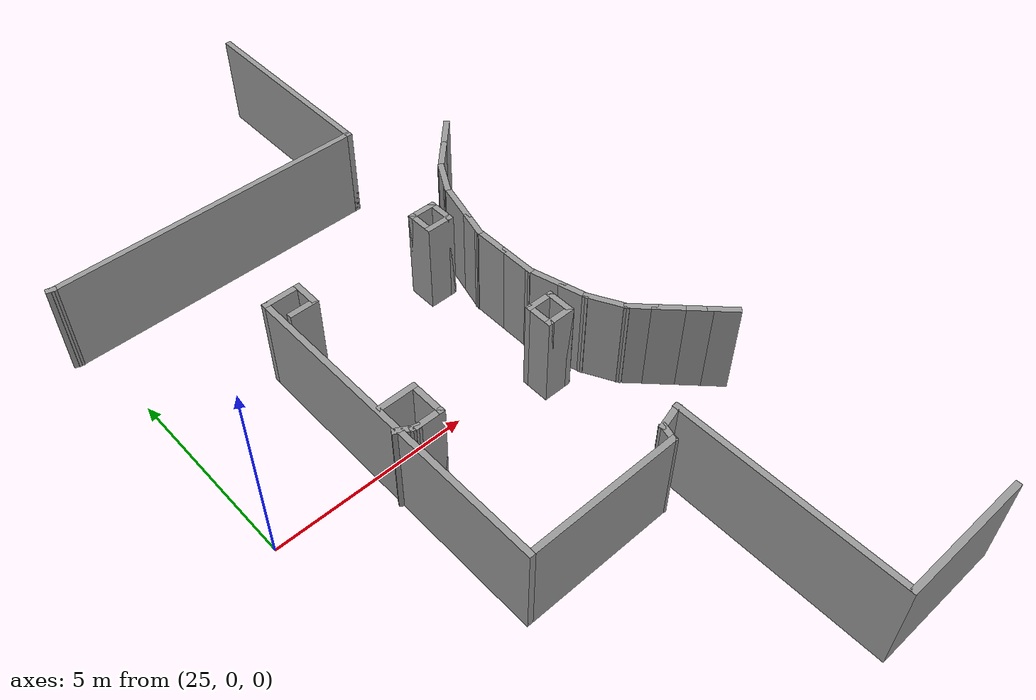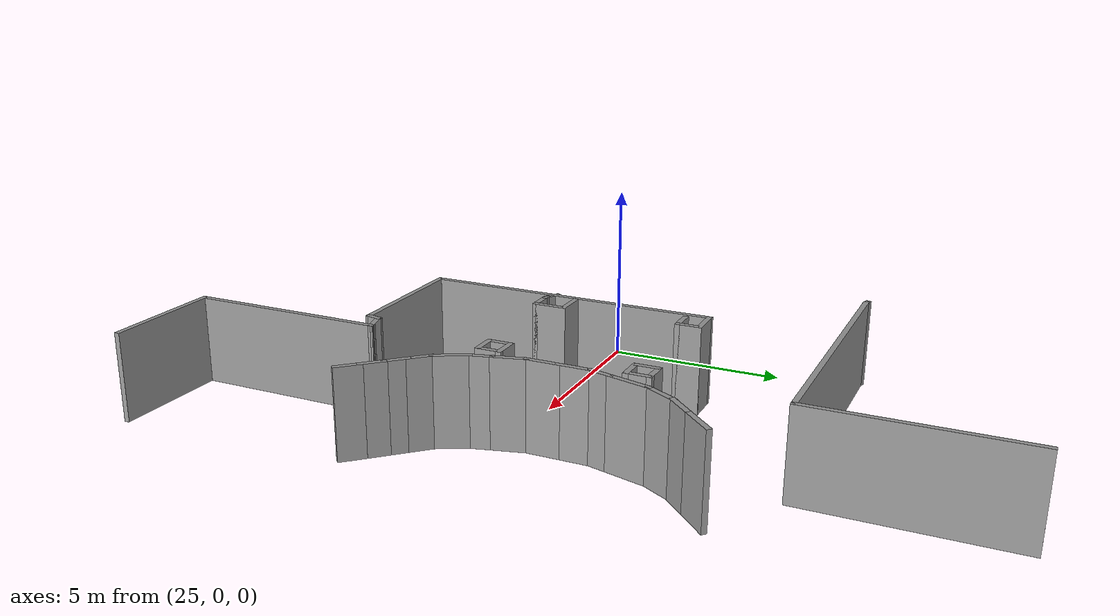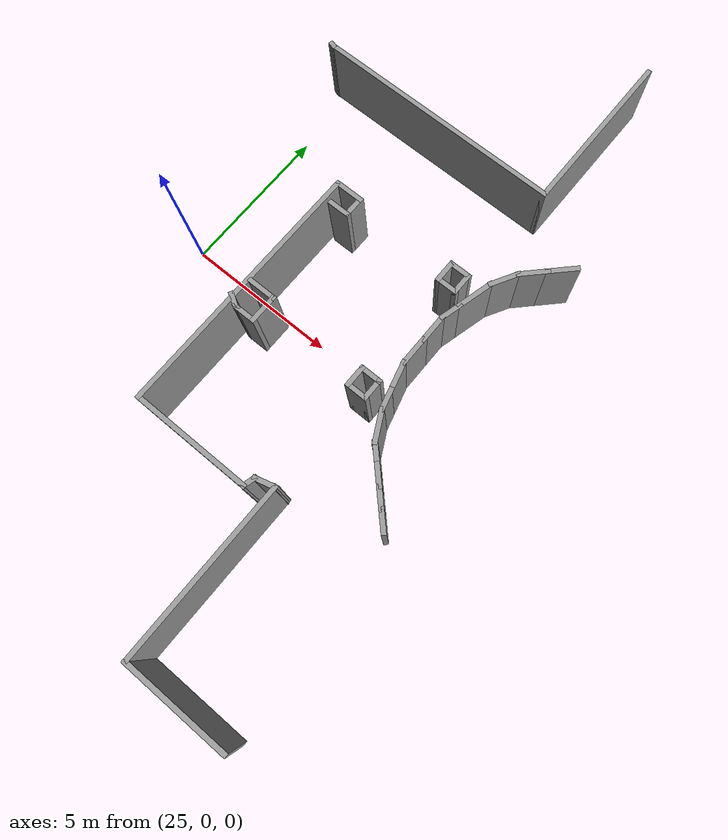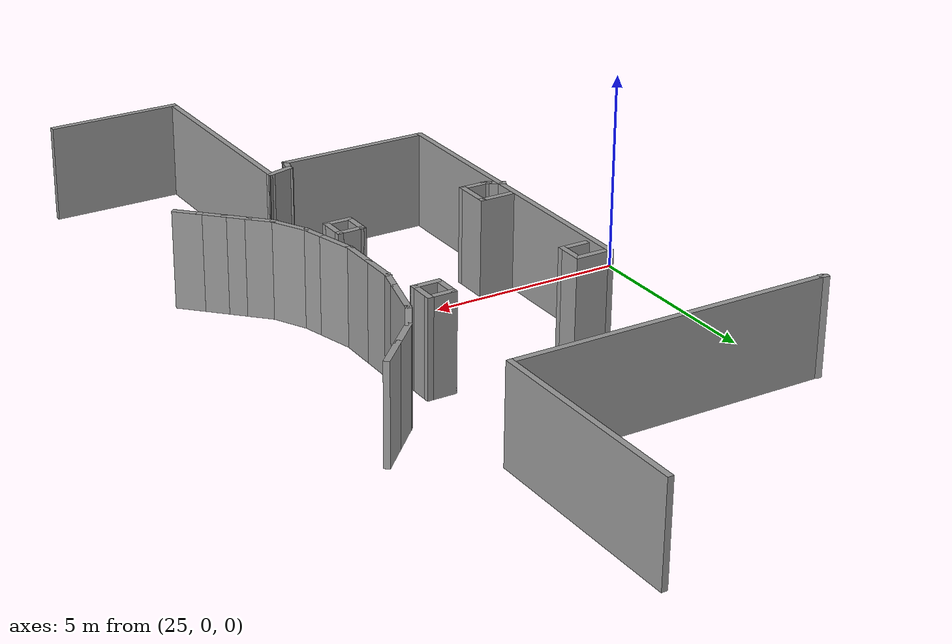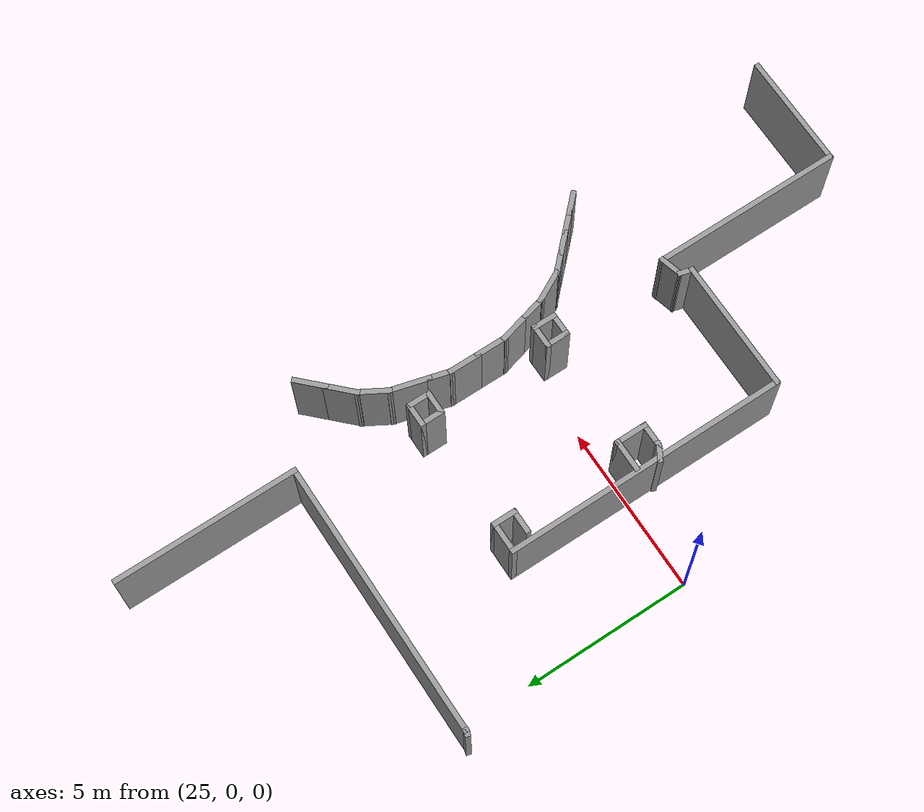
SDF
<sdf version="1.7">
 <model name="TD_n1">
  <pose>-6.74052 -9.30399 0 0 -0 0</pose>
  <link name="Wall_248">
   <collision name="Wall_248_Collision">
    <geometry><box><size>0.25 0.15 2.5</size></box></geometry>
    <pose>0 0 1.25 0 -0 0</pose>
   </collision>
   <visual name="Wall_248_Visual">
    <pose>0 0 1.25 0 -0 0</pose>
    <geometry><box><size>0.25 0.15 2.5</size></box></geometry>
    <material>
     <script><uri>file://media/materials/scripts/gazebo.material</uri><name>Gazebo/Grey</name></script>
     <ambient>1 1 1 1</ambient>
    </material>
    <meta><layer>0</layer></meta>
   </visual>
   <pose>31.2335 16.5416 0 0 -0 -0.261799</pose>
  </link>
  <link name="Wall_249">
   <collision name="Wall_249_Collision">
    <geometry><box><size>8.25 0.15 2.5</size></box></geometry>
    <pose>0 0 1.25 0 -0 0</pose>
   </collision>
   <visual name="Wall_249_Visual">
    <pose>0 0 1.25 0 -0 0</pose>
    <geometry><box><size>8.25 0.15 2.5</size></box></geometry>
    <material>
     <script><uri>file://media/materials/scripts/gazebo.material</uri><name>Gazebo/Grey</name></script>
     <ambient>1 1 1 1</ambient>
    </material>
    <meta><layer>0</layer></meta>
   </visual>
   <pose>35.3317 16.5287 0 0 -0 0</pose>
  </link>
  <link name="Wall_250">
   <collision name="Wall_250_Collision">
    <geometry><box><size>5.5 0.15 2.5</size></box></geometry>
    <pose>0 0 1.25 0 -0 0</pose>
   </collision>
   <visual name="Wall_250_Visual">
    <pose>0 0 1.25 0 -0 0</pose>
    <geometry><box><size>5.5 0.15 2.5</size></box></geometry>
    <material>
     <script><uri>file://media/materials/scripts/gazebo.material</uri><name>Gazebo/Grey</name></script>
     <ambient>1 1 1 1</ambient>
    </material>
    <meta><layer>0</layer></meta>
   </visual>
   <pose>39.3817 19.2037 0 0 -0 1.5708</pose>
  </link>
  <link name="Wall_259">
   <collision name="Wall_259_Collision">
    <geometry><box><size>8.5 0.15 2.5</size></box></geometry>
    <pose>0 0 1.25 0 -0 0</pose>
   </collision>
   <visual name="Wall_259_Visual">
    <pose>0 0 1.25 0 -0 0</pose>
    <geometry><box><size>8.5 0.15 2.5</size></box></geometry>
    <material>
     <script><uri>file://media/materials/scripts/gazebo.material</uri><name>Gazebo/Grey</name></script>
     <ambient>1 1 1 1</ambient>
    </material>
    <meta><layer>0</layer></meta>
   </visual>
   <pose>34.4688 8.81743 0 0 -0 -1.5708</pose>
  </link>
  <link name="Wall_260">
   <collision name="Wall_260_Collision">
    <geometry><box><size>4 0.15 2.5</size></box></geometry>
    <pose>0 0 1.25 0 -0 0</pose>
   </collision>
   <visual name="Wall_260_Visual">
    <pose>0 0 1.25 0 -0 0</pose>
    <geometry><box><size>4 0.15 2.5</size></box></geometry>
    <material>
     <script><uri>file://media/materials/scripts/gazebo.material</uri><name>Gazebo/Grey</name></script>
     <ambient>1 1 1 1</ambient>
    </material>
    <meta><layer>0</layer></meta>
   </visual>
   <pose>36.3938 4.64243 0 0 -0 0</pose>
  </link>
  <link name="Wall_261">
   <collision name="Wall_261_Collision">
    <geometry><box><size>0.5 0.15 2.5</size></box></geometry>
    <pose>0 0 1.25 0 -0 0</pose>
   </collision>
   <visual name="Wall_261_Visual">
    <pose>0 0 1.25 0 -0 0</pose>
    <geometry><box><size>0.5 0.15 2.5</size></box></geometry>
    <material>
     <script><uri>file://media/materials/scripts/gazebo.material</uri><name>Gazebo/Grey</name></script>
     <ambient>1 1 1 1</ambient>
    </material>
    <meta><layer>0</layer></meta>
   </visual>
   <pose>38.364 4.81147 0 0 -0 1.309</pose>
  </link>
  <link name="Wall_262">
   <collision name="Wall_262_Collision">
    <geometry><box><size>0.75 0.15 2.5</size></box></geometry>
    <pose>0 0 1.25 0 -0 0</pose>
   </collision>
   <visual name="Wall_262_Visual">
    <pose>0 0 1.25 0 -0 0</pose>
    <geometry><box><size>0.75 0.15 2.5</size></box></geometry>
    <material>
     <script><uri>file://media/materials/scripts/gazebo.material</uri><name>Gazebo/Grey</name></script>
     <ambient>1 1 1 1</ambient>
    </material>
    <meta><layer>0</layer></meta>
   </visual>
   <pose>38.6991 5.05815 0 0 -0 0.261799</pose>
  </link>
  <link name="Wall_263">
   <collision name="Wall_263_Collision">
    <geometry><box><size>5.75 0.15 2.5</size></box></geometry>
    <pose>0 0 1.25 0 -0 0</pose>
   </collision>
   <visual name="Wall_263_Visual">
    <pose>0 0 1.25 0 -0 0</pose>
    <geometry><box><size>5.75 0.15 2.5</size></box></geometry>
    <material>
     <script><uri>file://media/materials/scripts/gazebo.material</uri><name>Gazebo/Grey</name></script>
     <ambient>1 1 1 1</ambient>
    </material>
    <meta><layer>0</layer></meta>
   </visual>
   <pose>38.9889 2.3358 0 0 -0 -1.5708</pose>
  </link>
  <link name="Wall_264">
   <collision name="Wall_264_Collision">
    <geometry><box><size>3.5 0.15 2.5</size></box></geometry>
    <pose>0 0 1.25 0 -0 0</pose>
   </collision>
   <visual name="Wall_264_Visual">
    <pose>0 0 1.25 0 -0 0</pose>
    <geometry><box><size>3.5 0.15 2.5</size></box></geometry>
    <material>
     <script><uri>file://media/materials/scripts/gazebo.material</uri><name>Gazebo/Grey</name></script>
     <ambient>1 1 1 1</ambient>
    </material>
    <meta><layer>0</layer></meta>
   </visual>
   <pose>40.6639 -0.464205 0 0 -0 0</pose>
  </link>
  <link name="Wall_281">
   <collision name="Wall_281_Collision">
    <geometry><box><size>0.75 0.15 2.5</size></box></geometry>
    <pose>0 0 1.25 0 -0 0</pose>
   </collision>
   <visual name="Wall_281_Visual">
    <pose>0 0 1.25 0 -0 0</pose>
    <geometry><box><size>0.75 0.15 2.5</size></box></geometry>
    <material>
     <script><uri>file://media/materials/scripts/gazebo.material</uri><name>Gazebo/Grey</name></script>
     <ambient>1 1 1 1</ambient>
    </material>
    <meta><layer>0</layer></meta>
   </visual>
   <pose>40.4669 7.51143 0 0 -0 -0.785398</pose>
  </link>
  <link name="Wall_282">
   <collision name="Wall_282_Collision">
    <geometry><box><size>0.75 0.15 2.5</size></box></geometry>
    <pose>0 0 1.25 0 -0 0</pose>
   </collision>
   <visual name="Wall_282_Visual">
    <pose>0 0 1.25 0 -0 0</pose>
    <geometry><box><size>0.75 0.15 2.5</size></box></geometry>
    <material>
     <script><uri>file://media/materials/scripts/gazebo.material</uri><name>Gazebo/Grey</name></script>
     <ambient>1 1 1 1</ambient>
    </material>
    <meta><layer>0</layer></meta>
   </visual>
   <pose>40.8911 7.08716 0 0 -0 -0.785398</pose>
  </link>
  <link name="Wall_283">
   <collision name="Wall_283_Collision">
    <geometry><box><size>0.75 0.15 2.5</size></box></geometry>
    <pose>0 0 1.25 0 -0 0</pose>
   </collision>
   <visual name="Wall_283_Visual">
    <pose>0 0 1.25 0 -0 0</pose>
    <geometry><box><size>0.75 0.15 2.5</size></box></geometry>
    <material>
     <script><uri>file://media/materials/scripts/gazebo.material</uri><name>Gazebo/Grey</name></script>
     <ambient>1 1 1 1</ambient>
    </material>
    <meta><layer>0</layer></meta>
   </visual>
   <pose>41.3154 6.6629 0 0 -0 -0.785398</pose>
  </link>
  <link name="Wall_284">
   <collision name="Wall_284_Collision">
    <geometry><box><size>0.75 0.15 2.5</size></box></geometry>
    <pose>0 0 1.25 0 -0 0</pose>
   </collision>
   <visual name="Wall_284_Visual">
    <pose>0 0 1.25 0 -0 0</pose>
    <geometry><box><size>0.75 0.15 2.5</size></box></geometry>
    <material>
     <script><uri>file://media/materials/scripts/gazebo.material</uri><name>Gazebo/Grey</name></script>
     <ambient>1 1 1 1</ambient>
    </material>
    <meta><layer>0</layer></meta>
   </visual>
   <pose>41.7397 6.23864 0 0 -0 -0.785398</pose>
  </link>
  <link name="Wall_322">
   <collision name="Wall_322_Collision">
    <geometry><box><size>1 0.15 2.5</size></box></geometry>
    <pose>0 0 1.25 0 -0 0</pose>
   </collision>
   <visual name="Wall_322_Visual">
    <pose>0 0 1.25 0 -0 0</pose>
    <geometry><box><size>1 0.15 2.5</size></box></geometry>
    <material>
     <script><uri>file://media/materials/scripts/gazebo.material</uri><name>Gazebo/Grey</name></script>
     <ambient>1 1 1 1</ambient>
    </material>
    <meta><layer>0</layer></meta>
   </visual>
   <pose>41.2161 14.9201 0 0 -0 -2.35619</pose>
  </link>
  <link name="Wall_323">
   <collision name="Wall_323_Collision">
    <geometry><box><size>1 0.15 2.5</size></box></geometry>
    <pose>0 0 1.25 0 -0 0</pose>
   </collision>
   <visual name="Wall_323_Visual">
    <pose>0 0 1.25 0 -0 0</pose>
    <geometry><box><size>1 0.15 2.5</size></box></geometry>
    <material>
     <script><uri>file://media/materials/scripts/gazebo.material</uri><name>Gazebo/Grey</name></script>
     <ambient>1 1 1 1</ambient>
    </material>
    <meta><layer>0</layer></meta>
   </visual>
   <pose>40.6151 14.3191 0 0 -0 -2.35619</pose>
  </link>
  <link name="Wall_324">
   <collision name="Wall_324_Collision">
    <geometry><box><size>1 0.15 2.5</size></box></geometry>
    <pose>0 0 1.25 0 -0 0</pose>
   </collision>
   <visual name="Wall_324_Visual">
    <pose>0 0 1.25 0 -0 0</pose>
    <geometry><box><size>1 0.15 2.5</size></box></geometry>
    <material>
     <script><uri>file://media/materials/scripts/gazebo.material</uri><name>Gazebo/Grey</name></script>
     <ambient>1 1 1 1</ambient>
    </material>
    <meta><layer>0</layer></meta>
   </visual>
   <pose>40.1021 13.6505 0 0 -0 -2.0944</pose>
  </link>
  <link name="Wall_325">
   <collision name="Wall_325_Collision">
    <geometry><box><size>1.25 0.15 2.5</size></box></geometry>
    <pose>0 0 1.25 0 -0 0</pose>
   </collision>
   <visual name="Wall_325_Visual">
    <pose>0 0 1.25 0 -0 0</pose>
    <geometry><box><size>1.25 0.15 2.5</size></box></geometry>
    <material>
     <script><uri>file://media/materials/scripts/gazebo.material</uri><name>Gazebo/Grey</name></script>
     <ambient>1 1 1 1</ambient>
    </material>
    <meta><layer>0</layer></meta>
   </visual>
   <pose>39.7472 12.7512 0 0 -0 -1.8326</pose>
  </link>
  <link name="Wall_326">
   <collision name="Wall_326_Collision">
    <geometry><box><size>0.75 0.15 2.5</size></box></geometry>
    <pose>0 0 1.25 0 -0 0</pose>
   </collision>
   <visual name="Wall_326_Visual">
    <pose>0 0 1.25 0 -0 0</pose>
    <geometry><box><size>0.75 0.15 2.5</size></box></geometry>
    <material>
     <script><uri>file://media/materials/scripts/gazebo.material</uri><name>Gazebo/Grey</name></script>
     <ambient>1 1 1 1</ambient>
    </material>
    <meta><layer>0</layer></meta>
   </visual>
   <pose>39.5272 11.9302 0 0 -0 -1.8326</pose>
  </link>
  <link name="Wall_327">
   <collision name="Wall_327_Collision">
    <geometry><box><size>1 0.15 2.5</size></box></geometry>
    <pose>0 0 1.25 0 -0 0</pose>
   </collision>
   <visual name="Wall_327_Visual">
    <pose>0 0 1.25 0 -0 0</pose>
    <geometry><box><size>1 0.15 2.5</size></box></geometry>
    <material>
     <script><uri>file://media/materials/scripts/gazebo.material</uri><name>Gazebo/Grey</name></script>
     <ambient>1 1 1 1</ambient>
    </material>
    <meta><layer>0</layer></meta>
   </visual>
   <pose>39.4496 11.2154 0 0 -0 -1.5708</pose>
  </link>
  <link name="Wall_328">
   <collision name="Wall_328_Collision">
    <geometry><box><size>1 0.15 2.5</size></box></geometry>
    <pose>0 0 1.25 0 -0 0</pose>
   </collision>
   <visual name="Wall_328_Visual">
    <pose>0 0 1.25 0 -0 0</pose>
    <geometry><box><size>1 0.15 2.5</size></box></geometry>
    <material>
     <script><uri>file://media/materials/scripts/gazebo.material</uri><name>Gazebo/Grey</name></script>
     <ambient>1 1 1 1</ambient>
    </material>
    <meta><layer>0</layer></meta>
   </visual>
   <pose>39.4496 10.3654 0 0 -0 -1.5708</pose>
  </link>
  <link name="Wall_329">
   <collision name="Wall_329_Collision">
    <geometry><box><size>1 0.15 2.5</size></box></geometry>
    <pose>0 0 1.25 0 -0 0</pose>
   </collision>
   <visual name="Wall_329_Visual">
    <pose>0 0 1.25 0 -0 0</pose>
    <geometry><box><size>1 0.15 2.5</size></box></geometry>
    <material>
     <script><uri>file://media/materials/scripts/gazebo.material</uri><name>Gazebo/Grey</name></script>
     <ambient>1 1 1 1</ambient>
    </material>
    <meta><layer>0</layer></meta>
   </visual>
   <pose>39.5596 9.52985 0 0 -0 -1.309</pose>
  </link>
  <link name="Wall_330">
   <collision name="Wall_330_Collision">
    <geometry><box><size>0.75 0.15 2.5</size></box></geometry>
    <pose>0 0 1.25 0 -0 0</pose>
   </collision>
   <visual name="Wall_330_Visual">
    <pose>0 0 1.25 0 -0 0</pose>
    <geometry><box><size>0.75 0.15 2.5</size></box></geometry>
    <material>
     <script><uri>file://media/materials/scripts/gazebo.material</uri><name>Gazebo/Grey</name></script>
     <ambient>1 1 1 1</ambient>
    </material>
    <meta><layer>0</layer></meta>
   </visual>
   <pose>39.7472 8.82956 0 0 -0 -1.309</pose>
  </link>
  <link name="Wall_331">
   <collision name="Wall_331_Collision">
    <geometry><box><size>1.0725 0.15 2.5</size></box></geometry>
    <pose>0 0 1.25 0 -0 0</pose>
   </collision>
   <visual name="Wall_331_Visual">
    <pose>0 0 1.25 0 -0 0</pose>
    <geometry><box><size>1.0725 0.15 2.5</size></box></geometry>
    <material>
     <script><uri>file://media/materials/scripts/gazebo.material</uri><name>Gazebo/Grey</name></script>
     <ambient>1 1 1 1</ambient>
    </material>
    <meta><layer>0</layer></meta>
   </visual>
   <pose>40.0398 8.13167 0 0 -0 -1.08604</pose>
  </link>
  <link name="Wall_364">
   <collision name="Wall_364_Collision">
    <geometry><box><size>0.75 0.15 2.5</size></box></geometry>
    <pose>0 0 1.25 0 -0 0</pose>
   </collision>
   <visual name="Wall_364_Visual">
    <pose>0 0 1.25 0 -0 0</pose>
    <geometry><box><size>0.75 0.15 2.5</size></box></geometry>
    <material>
     <script><uri>file://media/materials/scripts/gazebo.material</uri><name>Gazebo/Grey</name></script>
     <ambient>1 1 1 1</ambient>
    </material>
    <meta><layer>0</layer></meta>
   </visual>
   <pose>38.6638 8.79577 0 0 -0 -1.5708</pose>
  </link>
  <link name="Wall_365">
   <collision name="Wall_365_Collision">
    <geometry><box><size>0.75 0.15 2.5</size></box></geometry>
    <pose>0 0 1.25 0 -0 0</pose>
   </collision>
   <visual name="Wall_365_Visual">
    <pose>0 0 1.25 0 -0 0</pose>
    <geometry><box><size>0.75 0.15 2.5</size></box></geometry>
    <material>
     <script><uri>file://media/materials/scripts/gazebo.material</uri><name>Gazebo/Grey</name></script>
     <ambient>1 1 1 1</ambient>
    </material>
    <meta><layer>0</layer></meta>
   </visual>
   <pose>38.9638 8.49577 0 0 -0 0</pose>
  </link>
  <link name="Wall_366">
   <collision name="Wall_366_Collision">
    <geometry><box><size>0.75 0.15 2.5</size></box></geometry>
    <pose>0 0 1.25 0 -0 0</pose>
   </collision>
   <visual name="Wall_366_Visual">
    <pose>0 0 1.25 0 -0 0</pose>
    <geometry><box><size>0.75 0.15 2.5</size></box></geometry>
    <material>
     <script><uri>file://media/materials/scripts/gazebo.material</uri><name>Gazebo/Grey</name></script>
     <ambient>1 1 1 1</ambient>
    </material>
    <meta><layer>0</layer></meta>
   </visual>
   <pose>39.2638 8.79577 0 0 -0 1.5708</pose>
  </link>
  <link name="Wall_367">
   <collision name="Wall_367_Collision">
    <geometry><box><size>0.75 0.15 2.5</size></box></geometry>
    <pose>0 0 1.25 0 -0 0</pose>
   </collision>
   <visual name="Wall_367_Visual">
    <pose>0 0 1.25 0 -0 0</pose>
    <geometry><box><size>0.75 0.15 2.5</size></box></geometry>
    <material>
     <script><uri>file://media/materials/scripts/gazebo.material</uri><name>Gazebo/Grey</name></script>
     <ambient>1 1 1 1</ambient>
    </material>
    <meta><layer>0</layer></meta>
   </visual>
   <pose>38.9638 9.09577 0 0 -0 3.14159</pose>
  </link>
  <link name="Wall_369">
   <collision name="Wall_369_Collision">
    <geometry><box><size>0.75 0.15 2.5</size></box></geometry>
    <pose>0 0 1.25 0 -0 0</pose>
   </collision>
   <visual name="Wall_369_Visual">
    <pose>0 0 1.25 0 -0 0</pose>
    <geometry><box><size>0.75 0.15 2.5</size></box></geometry>
    <material>
     <script><uri>file://media/materials/scripts/gazebo.material</uri><name>Gazebo/Grey</name></script>
     <ambient>1 1 1 1</ambient>
    </material>
    <meta><layer>0</layer></meta>
   </visual>
   <pose>38.6439 12.7732 0 0 -0 -1.5708</pose>
  </link>
  <link name="Wall_370">
   <collision name="Wall_370_Collision">
    <geometry><box><size>0.75 0.15 2.5</size></box></geometry>
    <pose>0 0 1.25 0 -0 0</pose>
   </collision>
   <visual name="Wall_370_Visual">
    <pose>0 0 1.25 0 -0 0</pose>
    <geometry><box><size>0.75 0.15 2.5</size></box></geometry>
    <material>
     <script><uri>file://media/materials/scripts/gazebo.material</uri><name>Gazebo/Grey</name></script>
     <ambient>1 1 1 1</ambient>
    </material>
    <meta><layer>0</layer></meta>
   </visual>
   <pose>38.9439 12.4732 0 0 -0 0</pose>
  </link>
  <link name="Wall_371">
   <collision name="Wall_371_Collision">
    <geometry><box><size>0.75 0.15 2.5</size></box></geometry>
    <pose>0 0 1.25 0 -0 0</pose>
   </collision>
   <visual name="Wall_371_Visual">
    <pose>0 0 1.25 0 -0 0</pose>
    <geometry><box><size>0.75 0.15 2.5</size></box></geometry>
    <material>
     <script><uri>file://media/materials/scripts/gazebo.material</uri><name>Gazebo/Grey</name></script>
     <ambient>1 1 1 1</ambient>
    </material>
    <meta><layer>0</layer></meta>
   </visual>
   <pose>39.2439 12.7732 0 0 -0 1.5708</pose>
  </link>
  <link name="Wall_372">
   <collision name="Wall_372_Collision">
    <geometry><box><size>0.75 0.15 2.5</size></box></geometry>
    <pose>0 0 1.25 0 -0 0</pose>
   </collision>
   <visual name="Wall_372_Visual">
    <pose>0 0 1.25 0 -0 0</pose>
    <geometry><box><size>0.75 0.15 2.5</size></box></geometry>
    <material>
     <script><uri>file://media/materials/scripts/gazebo.material</uri><name>Gazebo/Grey</name></script>
     <ambient>1 1 1 1</ambient>
    </material>
    <meta><layer>0</layer></meta>
   </visual>
   <pose>38.9439 13.0732 0 0 -0 3.14159</pose>
  </link>
  <link name="Wall_374">
   <collision name="Wall_374_Collision">
    <geometry><box><size>1 0.15 2.5</size></box></geometry>
    <pose>0 0 1.25 0 -0 0</pose>
   </collision>
   <visual name="Wall_374_Visual">
    <pose>0 0 1.25 0 -0 0</pose>
    <geometry><box><size>1 0.15 2.5</size></box></geometry>
    <material>
     <script><uri>file://media/materials/scripts/gazebo.material</uri><name>Gazebo/Grey</name></script>
     <ambient>1 1 1 1</ambient>
    </material>
    <meta><layer>0</layer></meta>
   </visual>
   <pose>34.8938 12.9924 0 0 -0 0</pose>
  </link>
  <link name="Wall_375">
   <collision name="Wall_375_Collision">
    <geometry><box><size>0.75 0.15 2.5</size></box></geometry>
    <pose>0 0 1.25 0 -0 0</pose>
   </collision>
   <visual name="Wall_375_Visual">
    <pose>0 0 1.25 0 -0 0</pose>
    <geometry><box><size>0.75 0.15 2.5</size></box></geometry>
    <material>
     <script><uri>file://media/materials/scripts/gazebo.material</uri><name>Gazebo/Grey</name></script>
     <ambient>1 1 1 1</ambient>
    </material>
    <meta><layer>0</layer></meta>
   </visual>
   <pose>35.3188 12.6924 0 0 -0 -1.5708</pose>
  </link>
  <link name="Wall_376">
   <collision name="Wall_376_Collision">
    <geometry><box><size>0.75 0.15 2.5</size></box></geometry>
    <pose>0 0 1.25 0 -0 0</pose>
   </collision>
   <visual name="Wall_376_Visual">
    <pose>0 0 1.25 0 -0 0</pose>
    <geometry><box><size>0.75 0.15 2.5</size></box></geometry>
    <material>
     <script><uri>file://media/materials/scripts/gazebo.material</uri><name>Gazebo/Grey</name></script>
     <ambient>1 1 1 1</ambient>
    </material>
    <meta><layer>0</layer></meta>
   </visual>
   <pose>35.0188 12.3924 0 0 -0 3.14159</pose>
  </link>
  <link name="Wall_378">
   <collision name="Wall_378_Collision">
    <geometry><box><size>1 0.15 2.5</size></box></geometry>
    <pose>0 0 1.25 0 -0 0</pose>
   </collision>
   <visual name="Wall_378_Visual">
    <pose>0 0 1.25 0 -0 0</pose>
    <geometry><box><size>1 0.15 2.5</size></box></geometry>
    <material>
     <script><uri>file://media/materials/scripts/gazebo.material</uri><name>Gazebo/Grey</name></script>
     <ambient>1 1 1 1</ambient>
    </material>
    <meta><layer>0</layer></meta>
   </visual>
   <pose>34.9722 9.09577 0 0 -0 0</pose>
  </link>
  <link name="Wall_379">
   <collision name="Wall_379_Collision">
    <geometry><box><size>1 0.15 2.5</size></box></geometry>
    <pose>0 0 1.25 0 -0 0</pose>
   </collision>
   <visual name="Wall_379_Visual">
    <pose>0 0 1.25 0 -0 0</pose>
    <geometry><box><size>1 0.15 2.5</size></box></geometry>
    <material>
     <script><uri>file://media/materials/scripts/gazebo.material</uri><name>Gazebo/Grey</name></script>
     <ambient>1 1 1 1</ambient>
    </material>
    <meta><layer>0</layer></meta>
   </visual>
   <pose>35.3972 8.67077 0 0 -0 -1.5708</pose>
  </link>
  <link name="Wall_380">
   <collision name="Wall_380_Collision">
    <geometry><box><size>0.75 0.15 2.5</size></box></geometry>
    <pose>0 0 1.25 0 -0 0</pose>
   </collision>
   <visual name="Wall_380_Visual">
    <pose>0 0 1.25 0 -0 0</pose>
    <geometry><box><size>0.75 0.15 2.5</size></box></geometry>
    <material>
     <script><uri>file://media/materials/scripts/gazebo.material</uri><name>Gazebo/Grey</name></script>
     <ambient>1 1 1 1</ambient>
    </material>
    <meta><layer>0</layer></meta>
   </visual>
   <pose>35.0972 8.24577 0 0 -0 3.14159</pose>
  </link>
  <link name="Wall_381">
   <collision name="Wall_381_Collision">
    <geometry><box><size>0.25 0.15 2.5</size></box></geometry>
    <pose>0 0 1.25 0 -0 0</pose>
   </collision>
   <visual name="Wall_381_Visual">
    <pose>0 0 1.25 0 -0 0</pose>
    <geometry><box><size>0.25 0.15 2.5</size></box></geometry>
    <material>
     <script><uri>file://media/materials/scripts/gazebo.material</uri><name>Gazebo/Grey</name></script>
     <ambient>1 1 1 1</ambient>
    </material>
    <meta><layer>0</layer></meta>
   </visual>
   <pose>34.7489 8.25871 0 0 -0 2.87979</pose>
  </link>
  <link name="Wall_382">
   <collision name="Wall_382_Collision">
    <geometry><box><size>0.5 0.15 2.5</size></box></geometry>
    <pose>0 0 1.25 0 -0 0</pose>
   </collision>
   <visual name="Wall_382_Visual">
    <pose>0 0 1.25 0 -0 0</pose>
    <geometry><box><size>0.5 0.15 2.5</size></box></geometry>
    <material>
     <script><uri>file://media/materials/scripts/gazebo.material</uri><name>Gazebo/Grey</name></script>
     <ambient>1 1 1 1</ambient>
    </material>
    <meta><layer>0</layer></meta>
   </visual>
   <pose>34.549 8.35915 0 0 -0 2.61799</pose>
  </link>
  <static>1</static>
 </model>
</sdf>
